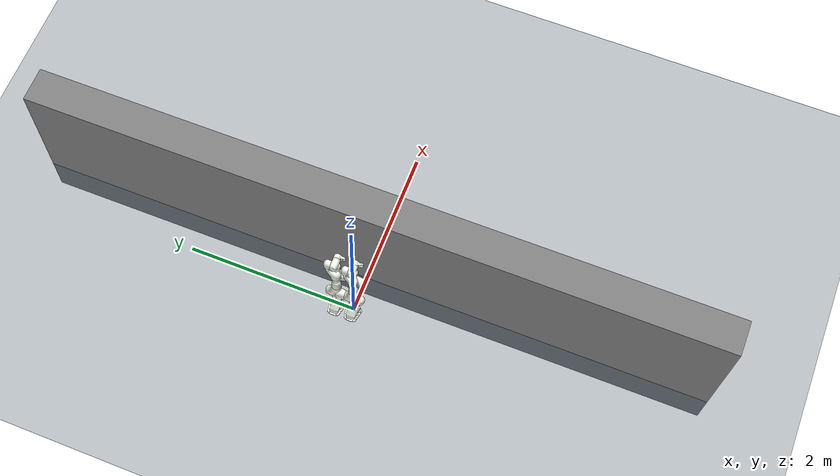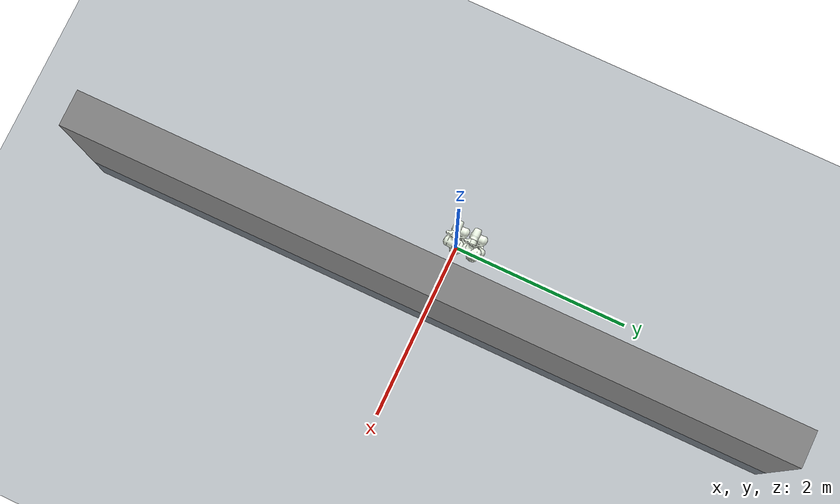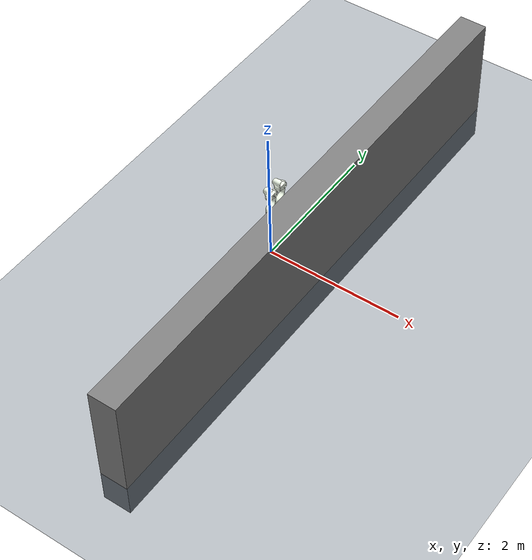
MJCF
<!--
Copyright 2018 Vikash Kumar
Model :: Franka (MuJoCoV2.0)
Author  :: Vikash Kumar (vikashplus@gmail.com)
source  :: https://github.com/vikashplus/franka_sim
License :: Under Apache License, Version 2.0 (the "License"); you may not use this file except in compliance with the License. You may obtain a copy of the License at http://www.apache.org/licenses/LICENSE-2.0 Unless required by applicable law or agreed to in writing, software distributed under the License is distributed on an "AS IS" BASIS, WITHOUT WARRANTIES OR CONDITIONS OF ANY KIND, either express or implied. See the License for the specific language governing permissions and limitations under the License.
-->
<mujoco model="franka_panda v200">

    <include file="assets/basic_scene.xml"/>
    <include file="assets/assets.xml"/>
    <compiler meshdir=""/>

    <worldbody>

        <include file="assets/chain0_nogripper.xml"/>
        <include file="assets/chain1_nogripper.xml"/>
    </worldbody>

    <include file='assets/actuator0_position_nogripper.xml'/>
    <include file='assets/actuator1_position_nogripper.xml'/>

</mujoco>

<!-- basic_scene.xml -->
<mujocoinclude>

    <asset>
        <texture name="texplane" type="2d" builtin="checker" rgb1=".2 .3 .4" rgb2=".1 0.15 0.2"
                width="512" height="512"/>
        <material name="MatGnd" reflectance="0.5" texture="texplane" texrepeat="1 1" texuniform="true"/>
    </asset>

    <worldbody>
        <light directional="false" diffuse=".8 .8 .8" specular="0.3 0.3 0.3" pos="1  1 3" dir="-1 -1 -3"/>
        <light directional="false" diffuse=".8 .8 .8" specular="0.3 0.3 0.3" pos="1 -1 3" dir="-1 1 -3"/>
        <light directional="false" diffuse=".8 .8 .8" specular="0.3 0.3 0.3" pos="-1 0 3" dir="1 0 -3" />
        <geom name="ground" pos="0 0 0" size="5 5 10" material="MatGnd" type="plane" contype="1" conaffinity="1"/>
        <body name="table" pos="0.61 0.0 0.5" zaxis="0 0 1">
            <geom size="0.2 4.0 1.0" type="box" />
        </body>
    </worldbody>
</mujocoinclude>

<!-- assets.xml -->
<mujocoinclude>

    <compiler angle="radian"/>
    <option timestep="0.002"/>
    <size nuser_actuator="5"/>

    <asset>
        <mesh name="link0_col" file="../panda_description/meshes/collision/link0.stl"/>
        <mesh name="link1_col" file="../panda_description/meshes/collision/link1.stl"/>
        <mesh name="link2_col" file="../panda_description/meshes/collision/link2.stl"/>
        <mesh name="link3_col" file="../panda_description/meshes/collision/link3.stl"/>
        <mesh name="link4_col" file="../panda_description/meshes/collision/link4.stl"/>
        <mesh name="link5_col" file="../panda_description/meshes/collision/link5.stl"/>
        <mesh name="link6_col" file="../panda_description/meshes/collision/link6.stl"/>
        <mesh name="link7_col" file="../panda_description/meshes/collision/link7.stl"/>
        <mesh name="hand_col" file="../panda_description/meshes/collision/hand.stl"/>
        <mesh name="link0_viz" file="../panda_description/meshes/visual/link0.stl"/>
        <mesh name="link1_viz" file="../panda_description/meshes/visual/link1.stl"/>
        <mesh name="link2_viz" file="../panda_description/meshes/visual/link2.stl"/>
        <mesh name="link3_viz" file="../panda_description/meshes/visual/link3.stl"/>
        <mesh name="link4_viz" file="../panda_description/meshes/visual/link4.stl"/>
        <mesh name="link5_viz" file="../panda_description/meshes/visual/link5.stl"/>
        <mesh name="link6_viz" file="../panda_description/meshes/visual/link6.stl"/>
        <mesh name="link7_viz" file="../panda_description/meshes/visual/link7.stl"/>
        <mesh name="hand_viz" file="../panda_description/meshes/visual/hand.stl"/>
    </asset>

    <default>
        <default class="panda">
            <joint pos="0 0 0" axis="0 0 1" limited="true"/>
            <position forcelimited="true" ctrllimited="true" user="1002 40 2001 -0.005 0.005"/>
            <default class="panda_viz">
                <geom contype="0" conaffinity="0" group="0" type="mesh" rgba=".95 .99 .92 1" mass="0"/>
            </default>

            <default class="panda_col">
                <geom contype="1" conaffinity="1" group="3" type="mesh" rgba=".5 .6 .7 1"/>
            </default>
            <default class="panda_arm">
                <joint damping="100"/>
            </default>
             <default class="panda_forearm">
                <joint damping="10"/>
            </default>
             <default class="panda_finger">
                <joint damping="100" armature='5'/>
                <geom friction="1 0.5 0.0001" solref="0.01 1" solimp="0.8 0.9 0.001" margin="0.001" user="0" rgba="0.5 0.6 0.7 .4" contype="1" conaffinity="0" condim="6" group="3" />
                <position user="1002 40 2001 -0.0001 0.0001"/>
            </default>
        </default>

    </default>

    <sensor>
        <jointpos name="fr_arm_jp1" joint="panda0_joint1"/>
        <jointpos name="fr_arm_jp2" joint="panda0_joint2"/>
        <jointpos name="fr_arm_jp3" joint="panda0_joint3"/>
        <jointpos name="fr_arm_jp4" joint="panda0_joint4"/>
        <jointpos name="fr_arm_jp5" joint="panda0_joint5"/>
        <jointpos name="fr_arm_jp6" joint="panda0_joint6"/>
        <jointpos name="fr_arm_jp7" joint="panda0_joint7"/>
        <jointvel name="fr_arm_jv1" joint="panda0_joint1"/>
        <jointvel name="fr_arm_jv2" joint="panda0_joint2"/>
        <jointvel name="fr_arm_jv3" joint="panda0_joint3"/>
        <jointvel name="fr_arm_jv4" joint="panda0_joint4"/>
        <jointvel name="fr_arm_jv5" joint="panda0_joint5"/>
        <jointvel name="fr_arm_jv6" joint="panda0_joint6"/>
        <jointvel name="fr_arm_jv7" joint="panda0_joint7"/>
        <force name="Force_sensor0" site="FT0"/>
        <torque name="Torque_sensor0" site="FT0"/>
        <force name="Force_sensor1" site="FT1"/>
        <torque name="Torque_sensor1" site="FT1"/>
    </sensor>

</mujocoinclude>

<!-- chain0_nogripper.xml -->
<mujocoinclude>

<!-- Robot limits pulled from https://frankaemika.github.io/docs/control_parameters.html#constants -->

    <body name="panda0_link0" childclass="panda" >
        <inertial pos="0 0 0" mass="2.91242" diaginertia="0.01 0.01 0.01" />
        <geom class="panda_viz" mesh="link0_viz"/>
        <geom class="panda_col" mesh="link0_col" mass="2.91242"/>
        <body name="panda0_link1" pos="0 0 0.333">
            <inertial pos="0 0 0" mass="2.7063" diaginertia="0.01 0.01 0.01" />
            <joint name="panda0_joint1" range="-2.8973 2.8973" class="panda_arm"/>
            <geom class="panda_viz" mesh="link1_viz"/>
            <geom class="panda_col" mesh="link1_col" mass="2.7063"/>
            <body name="panda0_link2" pos="0 0 0" euler="-1.57 0 0">
                <inertial pos="0 0 0" mass="2.73046" diaginertia="0.01 0.01 0.01" />
                <joint name="panda0_joint2" range="-1.7628 1.7628" class="panda_arm"/>
                <geom class="panda_viz" mesh="link2_viz"/>
                <geom class="panda_col" mesh="link2_col" mass="2.73046"/>
                <body name="panda0_link3" pos="0 -0.316 0" euler="1.57 0 0">
                    <inertial pos="0 0 0" mass="2.04104" diaginertia="0.01 0.01 0.01" />
                    <joint name="panda0_joint3" range="-2.8973 2.8973" class="panda_arm"/>
                    <geom class="panda_viz" mesh="link3_viz"/>
                    <geom class="panda_col" mesh="link3_col" mass="2.04104"/>
                    <body name="panda0_link4" pos="0.0825 0 0" euler="1.57 0 0">
                        <inertial pos="0 0 0" mass="2.08129" diaginertia="0.01 0.01 0.01" />
                        <joint name="panda0_joint4" range="-3.0718 0.0698" class="panda_arm"/>
                        <geom class="panda_viz" mesh="link4_viz"/>
                        <geom class="panda_col" mesh="link4_col" mass="2.08129"/>
                        <body name="panda0_link5" pos="-0.0825 0.384 0" euler="-1.57 0 0">
                            <inertial pos="0 0 0" mass="3.00049" diaginertia="0.01 0.01 0.01" />
                            <joint name="panda0_joint5" range="-2.8973 2.8973" class="panda_forearm"/>
                            <geom class="panda_viz" mesh="link5_viz"/>
                            <geom class="panda_col" mesh="link5_col" mass="3.00049"/>
                            <body name="panda0_link6" pos="0 0 0" euler="1.57 0 1.57">
                                <inertial pos="0 0 0" mass="1.3235" diaginertia="0.01 0.01 0.01" />
                                <joint name="panda0_joint6" range="-1.6573 2.1127" class="panda_forearm"/>
                                <geom class="panda_viz" mesh="link6_viz"/>
                                <geom class="panda_col" mesh="link6_col" mass="1.3235"/>
                                <body name="panda0_link7" pos="0.088 0 0" euler='1.57 0 0.7854'>
                                    <inertial pos="0 0 0" mass="0.2" diaginertia="0.01 0.01 0.01" />
                                    <joint name="panda0_joint7" range="-2.8973 2.8973" axis="0 0 1" class="panda_forearm"/>
                                    <geom class="panda_viz" mesh="link7_viz"/>
                                    <geom class="panda_col" mesh="link7_col" mass="0.2"/>
                                    <site name="FT" pos="0 0 0"/>
                                    <!-- End Effector attaches here-->

                                </body>
                            </body>
                        </body>
                    </body>
                </body>
            </body>
        </body>
    </body>

</mujocoinclude>

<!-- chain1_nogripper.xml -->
<mujocoinclude>

<!-- Robot limits pulled from https://frankaemika.github.io/docs/control_parameters.html#constants -->

    <body name="panda1_link0" childclass="panda" pos="0 0.2 0">
        <inertial pos="0 0 0" mass="2.91242" diaginertia="0.01 0.01 0.01" />
        <geom class="panda_viz" mesh="link0_viz"/>
        <geom class="panda_col" mesh="link0_col" mass="2.91242"/>
        <body name="panda1_link1" pos="0 0 0.333">
            <inertial pos="0 0 0" mass="2.7063" diaginertia="0.01 0.01 0.01" />
            <joint name="panda1_joint1" range="-2.8973 2.8973" class="panda_arm"/>
            <geom class="panda_viz" mesh="link1_viz"/>
            <geom class="panda_col" mesh="link1_col" mass="2.7063"/>
            <body name="panda1_link2" pos="0 0 0" euler="-1.57 0 0">
                <inertial pos="0 0 0" mass="2.73046" diaginertia="0.01 0.01 0.01" />
                <joint name="panda1_joint2" range="-1.7628 1.7628" class="panda_arm"/>
                <geom class="panda_viz" mesh="link2_viz"/>
                <geom class="panda_col" mesh="link2_col" mass="2.73046"/>
                <body name="panda1_link3" pos="0 -0.316 0" euler="1.57 0 0">
                    <inertial pos="0 0 0" mass="2.04104" diaginertia="0.01 0.01 0.01" />
                    <joint name="panda1_joint3" range="-2.8973 2.8973" class="panda_arm"/>
                    <geom class="panda_viz" mesh="link3_viz"/>
                    <geom class="panda_col" mesh="link3_col" mass="2.04104"/>
                    <body name="panda1_link4" pos="0.0825 0 0" euler="1.57 0 0">
                        <inertial pos="0 0 0" mass="2.08129" diaginertia="0.01 0.01 0.01" />
                        <joint name="panda1_joint4" range="-3.0718 0.0698" class="panda_arm"/>
                        <geom class="panda_viz" mesh="link4_viz"/>
                        <geom class="panda_col" mesh="link4_col" mass="2.08129"/>
                        <body name="panda1_link5" pos="-0.0825 0.384 0" euler="-1.57 0 0">
                            <inertial pos="0 0 0" mass="3.00049" diaginertia="0.01 0.01 0.01" />
                            <joint name="panda1_joint5" range="-2.8973 2.8973" class="panda_forearm"/>
                            <geom class="panda_viz" mesh="link5_viz"/>
                            <geom class="panda_col" mesh="link5_col" mass="3.00049"/>
                            <body name="panda1_link6" pos="0 0 0" euler="1.57 0 1.57">
                                <inertial pos="0 0 0" mass="1.3235" diaginertia="0.01 0.01 0.01" />
                                <joint name="panda1_joint6" range="-1.6573 2.1127" class="panda_forearm"/>
                                <geom class="panda_viz" mesh="link6_viz"/>
                                <geom class="panda_col" mesh="link6_col" mass="1.3235"/>
                                <body name="panda1_link7" pos="0.088 0 0" euler='1.57 0 0.7854'>
                                    <inertial pos="0 0 0" mass="0.2" diaginertia="0.01 0.01 0.01" />
                                    <joint name="panda1_joint7" range="-2.8973 2.8973" axis="0 0 1" class="panda_forearm"/>
                                    <geom class="panda_viz" mesh="link7_viz"/>
                                    <geom class="panda_col" mesh="link7_col" mass="0.2"/>
                                    <site name="FT1" pos="0 0 0"/>
                                    <!-- End Effector attaches here-->

                                </body>
                            </body>
                        </body>
                    </body>
                </body>
            </body>
        </body>
    </body>
</mujocoinclude>

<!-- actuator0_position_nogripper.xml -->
<mujocoinclude>

    <actuator>

        <position name="panda0_joint1" joint="panda0_joint1" class="panda" kp="870" forcerange="-87 87" ctrlrange="-2.8973 2.8973"/>
        <position name="panda0_joint2" joint="panda0_joint2" class="panda" kp="870" forcerange="-87 87" ctrlrange="-1.7628 1.7628"/>
        <position name="panda0_joint3" joint="panda0_joint3" class="panda" kp="870" forcerange="-87 87" ctrlrange="-2.8973 2.8973"/>
        <position name="panda0_joint4" joint="panda0_joint4" class="panda" kp="870" forcerange="-87 87" ctrlrange="-3.0718 0.0698"/>
        <position name="panda0_joint5" joint="panda0_joint5" class="panda" kp="120" forcerange="-12 12" ctrlrange="-2.8973 2.8973"/>
        <position name="panda0_joint6" joint="panda0_joint6" class="panda" kp="120" forcerange="-12 12" ctrlrange="-0.0873 2.1127"/>
        <position name="panda0_joint7" joint="panda0_joint7" class="panda" kp="120" forcerange="-12 12" ctrlrange="-2.8973 2.8973"/>

    </actuator>
</mujocoinclude>

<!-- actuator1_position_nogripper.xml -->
<mujocoinclude>

    <actuator>

        <position name="panda1_joint1" joint="panda1_joint1" class="panda" kp="870" forcerange="-87 87" ctrlrange="-2.8973 2.8973"/>
        <position name="panda1_joint2" joint="panda1_joint2" class="panda" kp="870" forcerange="-87 87" ctrlrange="-1.7628 1.7628"/>
        <position name="panda1_joint3" joint="panda1_joint3" class="panda" kp="870" forcerange="-87 87" ctrlrange="-2.8973 2.8973"/>
        <position name="panda1_joint4" joint="panda1_joint4" class="panda" kp="870" forcerange="-87 87" ctrlrange="-3.0718 0.0698"/>
        <position name="panda1_joint5" joint="panda1_joint5" class="panda" kp="120" forcerange="-12 12" ctrlrange="-2.8973 2.8973"/>
        <position name="panda1_joint6" joint="panda1_joint6" class="panda" kp="120" forcerange="-12 12" ctrlrange="-0.0873 2.1127"/>
        <position name="panda1_joint7" joint="panda1_joint7" class="panda" kp="120" forcerange="-12 12" ctrlrange="-2.8973 2.8973"/>

    </actuator>
</mujocoinclude>
